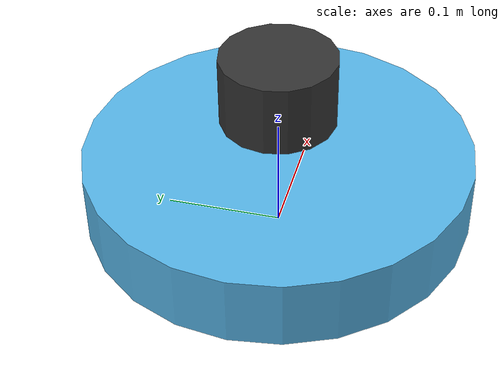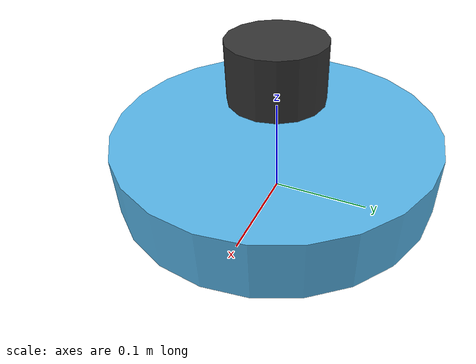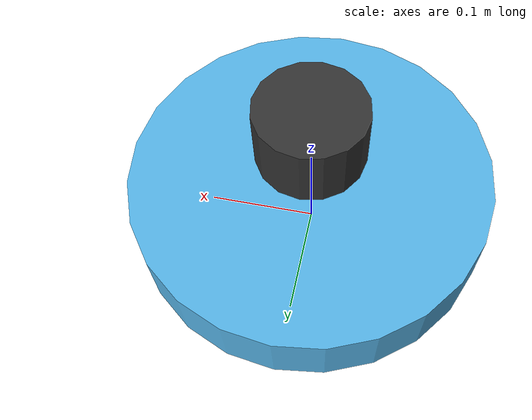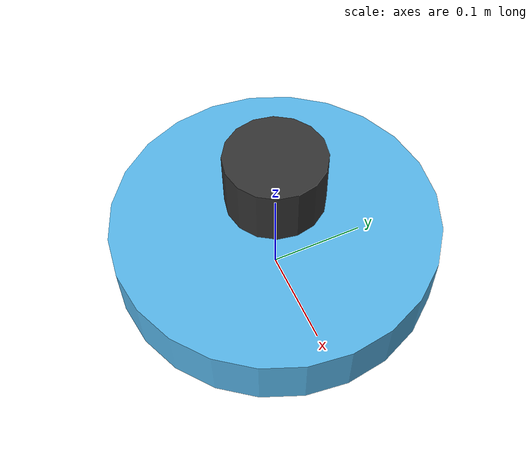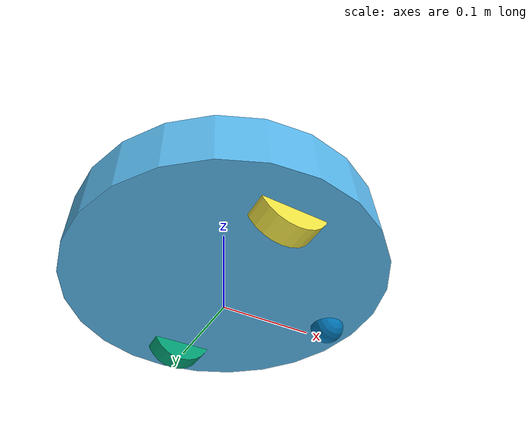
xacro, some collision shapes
<?xml version="1.0" ?>
<robot name="genbu" xmlns:xacro="http://ros.org/wiki/xacro">
  <xacro:include filename="$(find create_description)/urdf/create_base.urdf.xacro" />
  <xacro:include filename="$(find create_description)/urdf/create_2_gazebo.urdf.xacro" />

  <xacro:create_base wheel_separation="0.235" base_diameter="0.3485">
    <mesh filename="package://create_description/meshes/create_2.dae" />
  </xacro:create_base>

  <!-- RPLidar A1M8 sensor -->
  <link name="rplidar_base_link">
    <inertial>
      <mass value="0.17" />
      <origin xyz="0 0 0.03" />
      <inertia ixx="0.0001" ixy="0.0" ixz="0.0" iyy="0.0001" iyz="0.0" izz="0.0001" />
    </inertial>

    <visual>
      <origin xyz="0 0 0" rpy="0 0 0" />
      <geometry>
        <mesh filename="package://genbu_description/meshes/rplidar_a1m8.dae" />
      </geometry>
    </visual>

    <collision>
      <origin xyz="0 0 0.03" rpy="0 0 0" />
      <geometry>
        <cylinder radius="0.049" length="0.060" />
      </geometry>
    </collision>
  </link>

  <joint name="rplidar_base_joint" type="fixed">
    <origin xyz="0.0 0.0 0.0926" rpy="0 0 0" />
    <parent link="base_link" />
    <child link="rplidar_base_link" />
  </joint>
</robot>

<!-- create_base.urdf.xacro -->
<robot xmlns:xacro="http://ros.org/wiki/xacro">
  <xacro:property name="PI" value="3.1415926535897931" />

  <xacro:macro name="create_wheel" params="prefix y_offset wheel_radius wheel_width">
    <link name="${prefix}_wheel_link">
    <inertial>
      <origin xyz="0 0 0" />
      <mass value="0.01" />
      <inertia ixx="0.001" ixy="0.0" ixz="0.0" iyy="0.001" iyz="0.0" izz="0.001" />
    </inertial>

    <visual>
      <origin xyz="0 0 0" rpy="0 ${PI/2} ${PI/2}" />
      <geometry>
        <cylinder radius="${wheel_radius}" length="${wheel_width}" />
      </geometry>
    </visual>

    <collision>
      <origin xyz="0 0 0" rpy="0 ${PI/2} ${PI/2}" />
      <geometry>
        <cylinder radius="${wheel_radius}" length="${wheel_width}" />
      </geometry>
    </collision>
    </link>

   <joint name="${prefix}_wheel_joint" type="continuous">
      <origin xyz="0 ${y_offset} 0.015" rpy="0 0 0" />
      <parent link="base_link" />
      <child link="${prefix}_wheel_link" />
      <axis xyz="0 1 0" />
    </joint>
  </xacro:macro>

  <xacro:macro name="create_base" params="diffdrive_update_rate:=40 wheel_separation wheel_radius:=0.036 wheel_width:=0.024 wheel_torque:=1.0 wheel_accel:=1.8 mass_kg:=3.5 base_diameter *mesh">
    <xacro:include filename="$(find create_description)/urdf/create_base_gazebo.urdf.xacro" />

    <link name="base_footprint" />

    <link name="base_link">
    <inertial>
      <mass value="2" />
      <origin xyz="0 0 0.0" />
      <inertia ixx="0.02" ixy="0.0" ixz="0.0" iyy="0.02" iyz="0.0" izz="0.04" />
    </inertial>

    <visual>
      <origin xyz=" 0 0 0.0308" rpy="0 0 0" />
      <geometry>
        <xacro:insert_block name="mesh" />
      </geometry>
    </visual>

    <collision>
      <origin xyz="0.0 0.0 0.0308" rpy="0 0 0" />
      <geometry>
        <cylinder length="0.0611632" radius="0.16495" />
      </geometry>
    </collision>
    </link>

    <joint name="base_footprint_joint" type="fixed">
      <origin xyz="0 0 0.017" rpy="0 0 0" />
      <parent link="base_footprint" />
      <child link="base_link" />
    </joint>

    <xacro:create_wheel prefix="left" y_offset="${wheel_separation / 2}" wheel_radius="${wheel_radius}" wheel_width="${wheel_width}"/>
    <xacro:create_wheel prefix="right" y_offset="${wheel_separation / -2}" wheel_radius="${wheel_radius}" wheel_width="${wheel_width}"/>

    <link name="front_wheel_link">
    <inertial>
      <origin xyz="0 0 0" />
      <mass value="0.01" />
      <inertia ixx="0.001" ixy="0.0" ixz="0.0" iyy="0.001" iyz="0.0" izz="0.001" />
    </inertial>

    <visual>
      <origin xyz="0 0 0" rpy="0 ${PI/2} ${PI/2}" />
      <geometry>
        <sphere radius="0.018" />
      </geometry>
    </visual>

    <collision>
      <origin xyz="0 0 0" rpy="0 ${PI/2} ${PI/2}" />
      <geometry>
        <sphere radius="0.018" />
      </geometry>
    </collision>
    </link>

    <!-- fixed because there's no transmission -->
    <joint name="front_castor_joint" type="fixed">
      <origin xyz="0.13 0 0.0" rpy="0 0 0" />
      <parent link="base_link" />
      <child link="front_wheel_link" />
      <axis xyz="0 1 0" />
    </joint>

    <joint name="gyro_joint" type="fixed">
      <axis xyz="0 1 0" />
      <origin xyz="0 0 0.04" rpy="0 0 0" />
      <parent link="base_link" />
      <child link="gyro_link" />
    </joint>
    <link name="gyro_link">
    <inertial>
      <mass value="0.001" />
      <origin xyz="0 0 0" rpy="0 0 0" />
      <inertia ixx="0.0001" ixy="0" ixz="0" iyy="0.000001" iyz="0" izz="0.0001" />
    </inertial>
    </link>

    <!-- Simulation sensors -->
    <xacro:sim_create_base/>
  </xacro:macro>
</robot>
